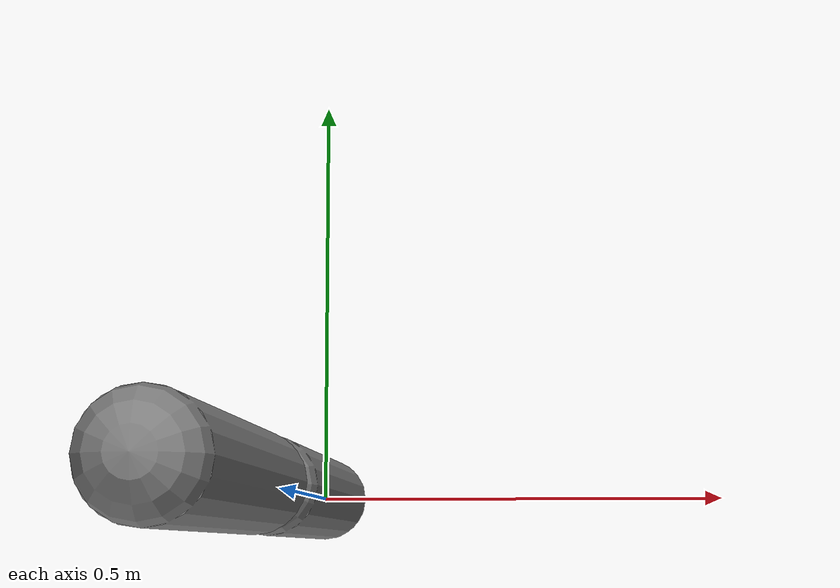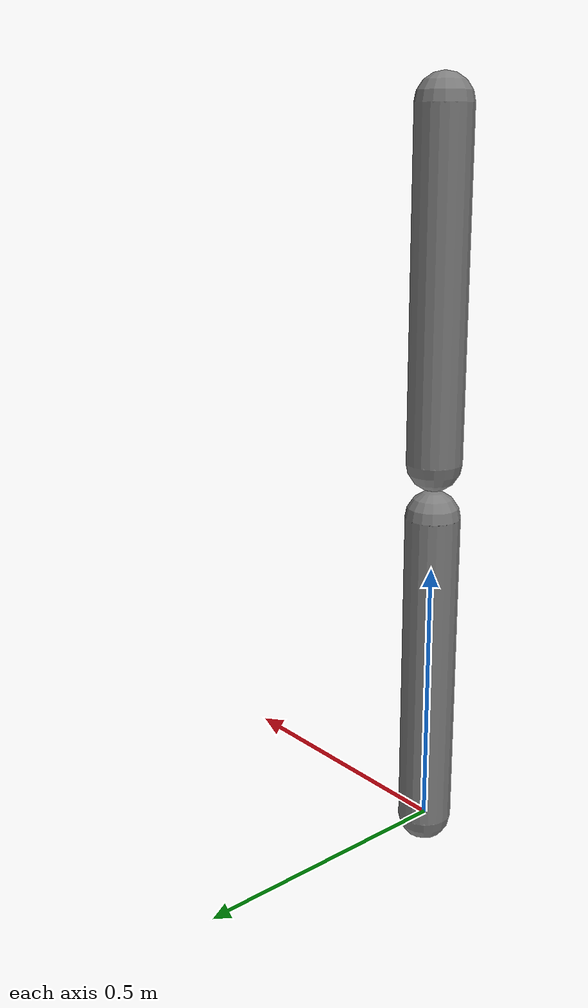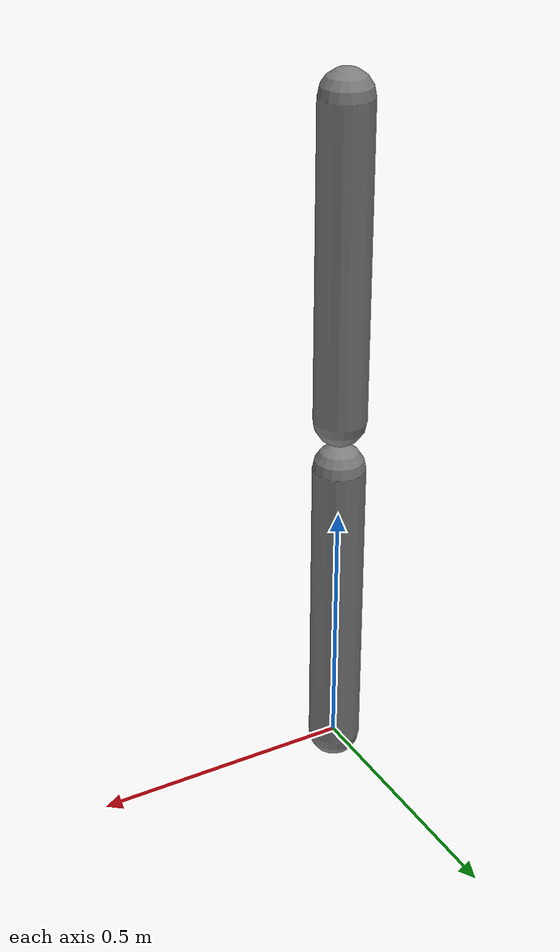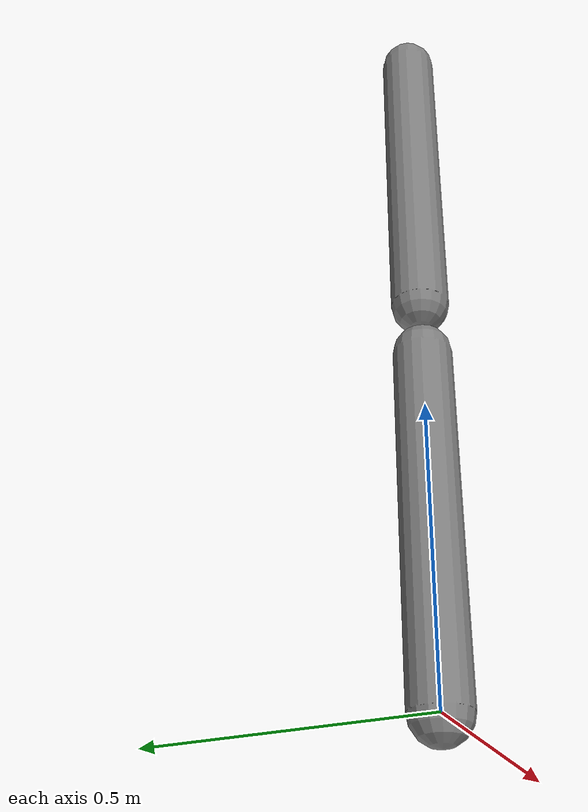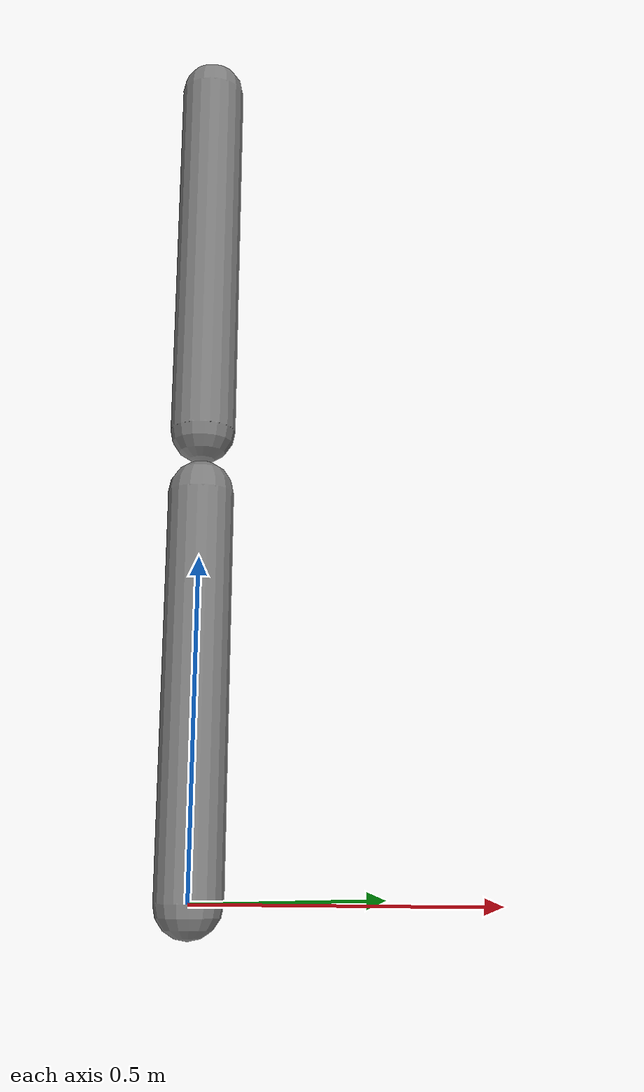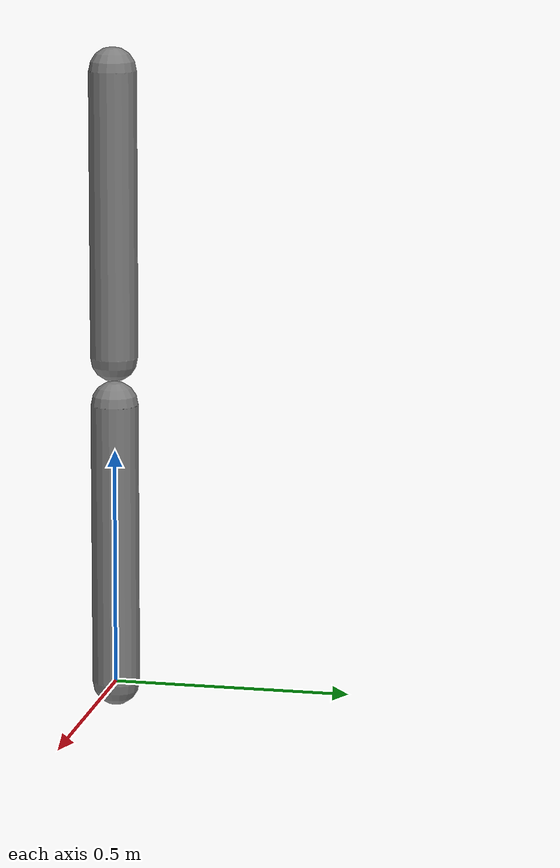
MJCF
<mujoco model="joint_mimic">
            <option gravity="0 0 -9.81" timestep="0.001"/>
            <worldbody>
                <body name="link1" pos="0 0 1">
                    <joint name="j1" type="hinge" axis="0 1 0" damping="1"/>
                    <geom type="capsule" size="0.05 0.3" mass="1.0"/>
                    <body name="link2" pos="0 0 -0.7">
                        <joint name="j2" type="hinge" axis="0 1 0" damping="1"/>
                        <geom type="capsule" size="0.05 0.3" mass="1.0"/>
                    </body>
                </body>
            </worldbody>
            <equality>
                <joint joint1="j1" joint2="j2" polycoef="0 1" solref="0.1 1.0"/>
            </equality>
        </mujoco>
